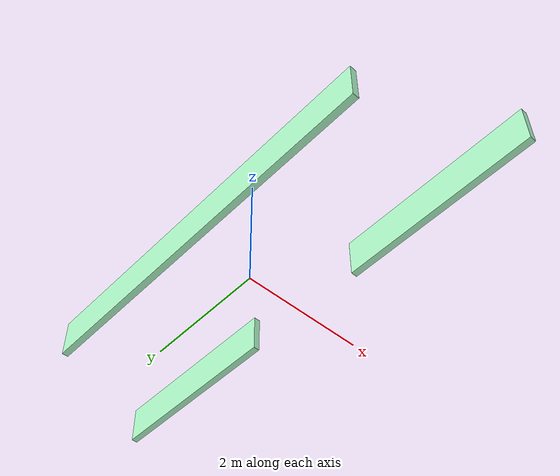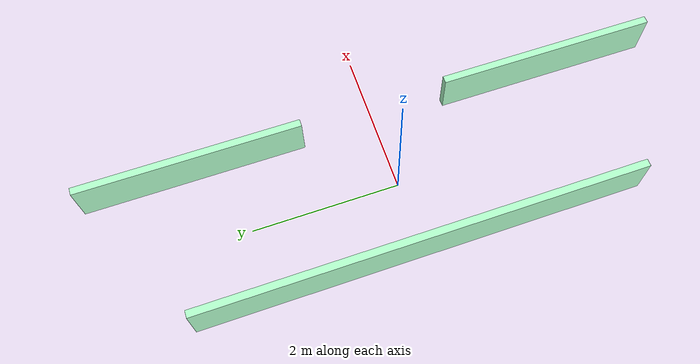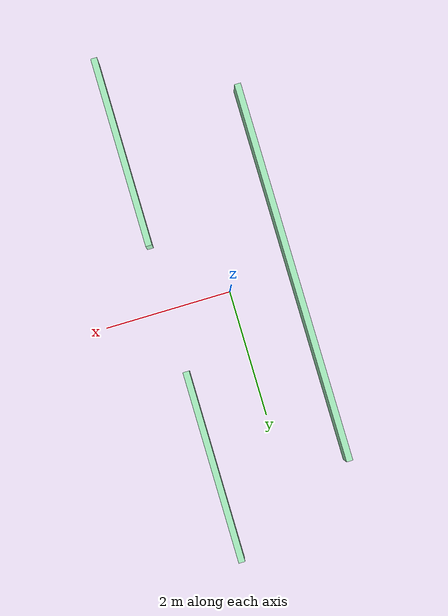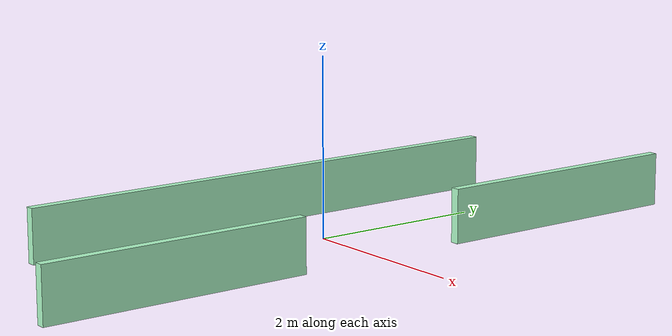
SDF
<?xml version="1.0" ?>
<!-- |    This document was autogenerated by xacro from paredes.xacro.sdf              | -->
<!-- |    EDITING THIS FILE BY HAND IS NOT RECOMMENDED                                 | -->
<!-- arquivo: objetos_cilindricos.xacro -->
<!-- Gerar com:
     $ xacro paredes.xacro.sdf > model.sdf
-->
<sdf version="1.8">
  <model name="obstaculos_cilindricos">
    <static>true</static>
    <link name="parede_fundo">
      <visual name="parede_fundo_visual">
        <pose>-1.0 0.0 0.3 0 0 1.5707963267948966</pose>
        <geometry>
          <box>
            <size>6.0 0.1 0.6</size>
          </box>
        </geometry>
        <material>
          <ambient>0.7 1.0 0.8 1</ambient>
          <diffuse>0.7 1.0 0.8 1</diffuse>
          <specular>0.3 0.4 0.3 1</specular>
        </material>
      </visual>
      <collision name="parede_fundo_collision">
        <pose>-1.0 0.0 0.3 0 0 1.5707963267948966</pose>
        <geometry>
          <box>
            <size>6.0 0.1 0.6</size>
          </box>
        </geometry>
      </collision>
    </link>
    <link name="parede_esquerda">
      <visual name="parede_esquerda_visual">
        <pose>1.0 -2.5 0.3 0 0 1.5707963267948966</pose>
        <geometry>
          <box>
            <size>3.0 0.1 0.6</size>
          </box>
        </geometry>
        <material>
          <ambient>0.7 1.0 0.8 1</ambient>
          <diffuse>0.7 1.0 0.8 1</diffuse>
          <specular>0.3 0.4 0.3 1</specular>
        </material>
      </visual>
      <collision name="parede_esquerda_collision">
        <pose>1.0 -2.5 0.3 0 0 1.5707963267948966</pose>
        <geometry>
          <box>
            <size>3.0 0.1 0.6</size>
          </box>
        </geometry>
      </collision>
    </link>
    <link name="parede_direita">
      <visual name="parede_direita_visual">
        <pose>1.0 2.5 0.3 0 0 -1.5707963267948966</pose>
        <geometry>
          <box>
            <size>3.0 0.1 0.6</size>
          </box>
        </geometry>
        <material>
          <ambient>0.7 1.0 0.8 1</ambient>
          <diffuse>0.7 1.0 0.8 1</diffuse>
          <specular>0.3 0.4 0.3 1</specular>
        </material>
      </visual>
      <collision name="parede_direita_collision">
        <pose>1.0 2.5 0.3 0 0 -1.5707963267948966</pose>
        <geometry>
          <box>
            <size>3.0 0.1 0.6</size>
          </box>
        </geometry>
      </collision>
    </link>
  </model>
</sdf>
